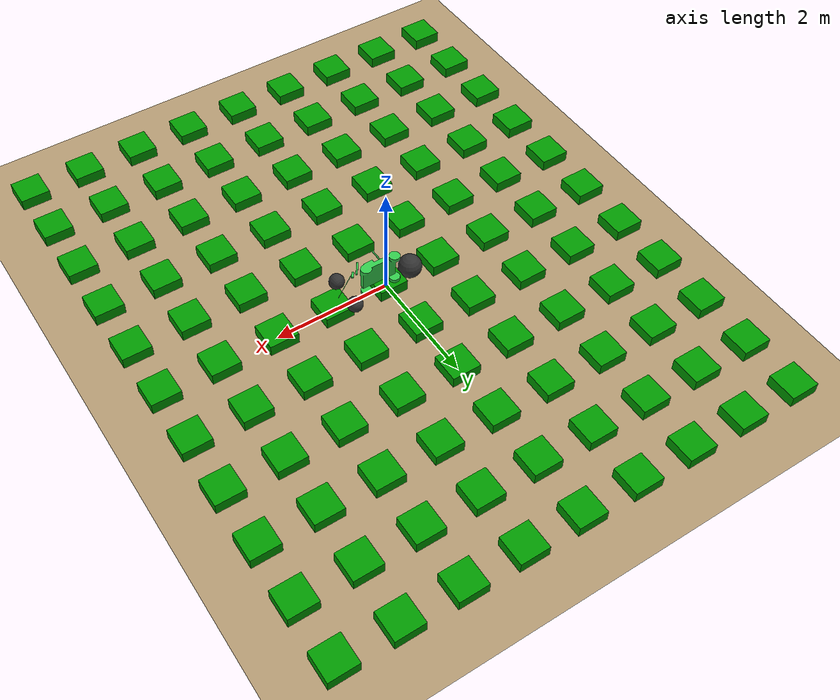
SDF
<sdf version="1.6">
  <world name="weeding_field">
    <physics name="1ms" type="ignored">
      <max_step_size>0.001</max_step_size>
      <real_time_factor>1.0</real_time_factor>
    </physics>
    <plugin filename="gz-sim-physics-system" name="gz::sim::systems::Physics"/>
    <plugin filename="gz-sim-user-commands-system" name="gz::sim::systems::UserCommands"/>
    <plugin filename="gz-sim-scene-broadcaster-system" name="gz::sim::systems::SceneBroadcaster"/>

    <light type="directional" name="sun">
      <pose>0 0 10 0 0 0</pose>
      <diffuse>1 1 1 1</diffuse>
      <direction>-0.5 0.1 -0.9</direction>
    </light>

    <model name="ground_plane">
      <static>true</static>
      <link name="link">
        <collision name="collision">
          <geometry><plane><normal>0 0 1</normal><size>100 100</size></plane></geometry>
        </collision>
        <visual name="visual">
          <geometry><plane><normal>0 0 1</normal><size>100 100</size></plane></geometry>
          <material><ambient>0.7 0.6 0.45 1</ambient><diffuse>0.7 0.6 0.45 1</diffuse></material>
        </visual>
      </link>
    </model>

    <!-- 9 crop rows: rows of green boxes along +Y -->

    <model name="crop_rows">
      <static>true</static>
      <link name="link">
      <collision name="crop_0_-5"><pose>-4 -5 0.1 0 0 0</pose>
        <geometry><box><size>0.5 0.5 0.2</size></box></geometry></collision>
      <visual name="crop_0_-5"><pose>-4 -5 0.1 0 0 0</pose>
        <geometry><box><size>0.5 0.5 0.2</size></box></geometry>
        <material><ambient>0 0.5 0 1</ambient><diffuse>0 0.6 0 1</diffuse></material></visual>

      <collision name="crop_0_-4"><pose>-4 -4 0.1 0 0 0</pose>
        <geometry><box><size>0.5 0.5 0.2</size></box></geometry></collision>
      <visual name="crop_0_-4"><pose>-4 -4 0.1 0 0 0</pose>
        <geometry><box><size>0.5 0.5 0.2</size></box></geometry>
        <material><ambient>0 0.5 0 1</ambient><diffuse>0 0.6 0 1</diffuse></material></visual>

      <collision name="crop_0_-3"><pose>-4 -3 0.1 0 0 0</pose>
        <geometry><box><size>0.5 0.5 0.2</size></box></geometry></collision>
      <visual name="crop_0_-3"><pose>-4 -3 0.1 0 0 0</pose>
        <geometry><box><size>0.5 0.5 0.2</size></box></geometry>
        <material><ambient>0 0.5 0 1</ambient><diffuse>0 0.6 0 1</diffuse></material></visual>

      <collision name="crop_0_-2"><pose>-4 -2 0.1 0 0 0</pose>
        <geometry><box><size>0.5 0.5 0.2</size></box></geometry></collision>
      <visual name="crop_0_-2"><pose>-4 -2 0.1 0 0 0</pose>
        <geometry><box><size>0.5 0.5 0.2</size></box></geometry>
        <material><ambient>0 0.5 0 1</ambient><diffuse>0 0.6 0 1</diffuse></material></visual>

      <collision name="crop_0_-1"><pose>-4 -1 0.1 0 0 0</pose>
        <geometry><box><size>0.5 0.5 0.2</size></box></geometry></collision>
      <visual name="crop_0_-1"><pose>-4 -1 0.1 0 0 0</pose>
        <geometry><box><size>0.5 0.5 0.2</size></box></geometry>
        <material><ambient>0 0.5 0 1</ambient><diffuse>0 0.6 0 1</diffuse></material></visual>

      <collision name="crop_0_0"><pose>-4 0 0.1 0 0 0</pose>
        <geometry><box><size>0.5 0.5 0.2</size></box></geometry></collision>
      <visual name="crop_0_0"><pose>-4 0 0.1 0 0 0</pose>
        <geometry><box><size>0.5 0.5 0.2</size></box></geometry>
        <material><ambient>0 0.5 0 1</ambient><diffuse>0 0.6 0 1</diffuse></material></visual>

      <collision name="crop_0_1"><pose>-4 1 0.1 0 0 0</pose>
        <geometry><box><size>0.5 0.5 0.2</size></box></geometry></collision>
      <visual name="crop_0_1"><pose>-4 1 0.1 0 0 0</pose>
        <geometry><box><size>0.5 0.5 0.2</size></box></geometry>
        <material><ambient>0 0.5 0 1</ambient><diffuse>0 0.6 0 1</diffuse></material></visual>

      <collision name="crop_0_2"><pose>-4 2 0.1 0 0 0</pose>
        <geometry><box><size>0.5 0.5 0.2</size></box></geometry></collision>
      <visual name="crop_0_2"><pose>-4 2 0.1 0 0 0</pose>
        <geometry><box><size>0.5 0.5 0.2</size></box></geometry>
        <material><ambient>0 0.5 0 1</ambient><diffuse>0 0.6 0 1</diffuse></material></visual>

      <collision name="crop_0_3"><pose>-4 3 0.1 0 0 0</pose>
        <geometry><box><size>0.5 0.5 0.2</size></box></geometry></collision>
      <visual name="crop_0_3"><pose>-4 3 0.1 0 0 0</pose>
        <geometry><box><size>0.5 0.5 0.2</size></box></geometry>
        <material><ambient>0 0.5 0 1</ambient><diffuse>0 0.6 0 1</diffuse></material></visual>

      <collision name="crop_0_4"><pose>-4 4 0.1 0 0 0</pose>
        <geometry><box><size>0.5 0.5 0.2</size></box></geometry></collision>
      <visual name="crop_0_4"><pose>-4 4 0.1 0 0 0</pose>
        <geometry><box><size>0.5 0.5 0.2</size></box></geometry>
        <material><ambient>0 0.5 0 1</ambient><diffuse>0 0.6 0 1</diffuse></material></visual>

      <collision name="crop_0_5"><pose>-4 5 0.1 0 0 0</pose>
        <geometry><box><size>0.5 0.5 0.2</size></box></geometry></collision>
      <visual name="crop_0_5"><pose>-4 5 0.1 0 0 0</pose>
        <geometry><box><size>0.5 0.5 0.2</size></box></geometry>
        <material><ambient>0 0.5 0 1</ambient><diffuse>0 0.6 0 1</diffuse></material></visual>

      <collision name="crop_1_-5"><pose>-3 -5 0.1 0 0 0</pose>
        <geometry><box><size>0.5 0.5 0.2</size></box></geometry></collision>
      <visual name="crop_1_-5"><pose>-3 -5 0.1 0 0 0</pose>
        <geometry><box><size>0.5 0.5 0.2</size></box></geometry>
        <material><ambient>0 0.5 0 1</ambient><diffuse>0 0.6 0 1</diffuse></material></visual>

      <collision name="crop_1_-4"><pose>-3 -4 0.1 0 0 0</pose>
        <geometry><box><size>0.5 0.5 0.2</size></box></geometry></collision>
      <visual name="crop_1_-4"><pose>-3 -4 0.1 0 0 0</pose>
        <geometry><box><size>0.5 0.5 0.2</size></box></geometry>
        <material><ambient>0 0.5 0 1</ambient><diffuse>0 0.6 0 1</diffuse></material></visual>

      <collision name="crop_1_-3"><pose>-3 -3 0.1 0 0 0</pose>
        <geometry><box><size>0.5 0.5 0.2</size></box></geometry></collision>
      <visual name="crop_1_-3"><pose>-3 -3 0.1 0 0 0</pose>
        <geometry><box><size>0.5 0.5 0.2</size></box></geometry>
        <material><ambient>0 0.5 0 1</ambient><diffuse>0 0.6 0 1</diffuse></material></visual>

      <collision name="crop_1_-2"><pose>-3 -2 0.1 0 0 0</pose>
        <geometry><box><size>0.5 0.5 0.2</size></box></geometry></collision>
      <visual name="crop_1_-2"><pose>-3 -2 0.1 0 0 0</pose>
        <geometry><box><size>0.5 0.5 0.2</size></box></geometry>
        <material><ambient>0 0.5 0 1</ambient><diffuse>0 0.6 0 1</diffuse></material></visual>

      <collision name="crop_1_-1"><pose>-3 -1 0.1 0 0 0</pose>
        <geometry><box><size>0.5 0.5 0.2</size></box></geometry></collision>
      <visual name="crop_1_-1"><pose>-3 -1 0.1 0 0 0</pose>
        <geometry><box><size>0.5 0.5 0.2</size></box></geometry>
        <material><ambient>0 0.5 0 1</ambient><diffuse>0 0.6 0 1</diffuse></material></visual>

      <collision name="crop_1_0"><pose>-3 0 0.1 0 0 0</pose>
        <geometry><box><size>0.5 0.5 0.2</size></box></geometry></collision>
      <visual name="crop_1_0"><pose>-3 0 0.1 0 0 0</pose>
        <geometry><box><size>0.5 0.5 0.2</size></box></geometry>
        <material><ambient>0 0.5 0 1</ambient><diffuse>0 0.6 0 1</diffuse></material></visual>

      <collision name="crop_1_1"><pose>-3 1 0.1 0 0 0</pose>
        <geometry><box><size>0.5 0.5 0.2</size></box></geometry></collision>
      <visual name="crop_1_1"><pose>-3 1 0.1 0 0 0</pose>
        <geometry><box><size>0.5 0.5 0.2</size></box></geometry>
        <material><ambient>0 0.5 0 1</ambient><diffuse>0 0.6 0 1</diffuse></material></visual>

      <collision name="crop_1_2"><pose>-3 2 0.1 0 0 0</pose>
        <geometry><box><size>0.5 0.5 0.2</size></box></geometry></collision>
      <visual name="crop_1_2"><pose>-3 2 0.1 0 0 0</pose>
        <geometry><box><size>0.5 0.5 0.2</size></box></geometry>
        <material><ambient>0 0.5 0 1</ambient><diffuse>0 0.6 0 1</diffuse></material></visual>

      <collision name="crop_1_3"><pose>-3 3 0.1 0 0 0</pose>
        <geometry><box><size>0.5 0.5 0.2</size></box></geometry></collision>
      <visual name="crop_1_3"><pose>-3 3 0.1 0 0 0</pose>
        <geometry><box><size>0.5 0.5 0.2</size></box></geometry>
        <material><ambient>0 0.5 0 1</ambient><diffuse>0 0.6 0 1</diffuse></material></visual>

      <collision name="crop_1_4"><pose>-3 4 0.1 0 0 0</pose>
        <geometry><box><size>0.5 0.5 0.2</size></box></geometry></collision>
      <visual name="crop_1_4"><pose>-3 4 0.1 0 0 0</pose>
        <geometry><box><size>0.5 0.5 0.2</size></box></geometry>
        <material><ambient>0 0.5 0 1</ambient><diffuse>0 0.6 0 1</diffuse></material></visual>

      <collision name="crop_1_5"><pose>-3 5 0.1 0 0 0</pose>
        <geometry><box><size>0.5 0.5 0.2</size></box></geometry></collision>
      <visual name="crop_1_5"><pose>-3 5 0.1 0 0 0</pose>
        <geometry><box><size>0.5 0.5 0.2</size></box></geometry>
        <material><ambient>0 0.5 0 1</ambient><diffuse>0 0.6 0 1</diffuse></material></visual>

      <collision name="crop_2_-5"><pose>-2 -5 0.1 0 0 0</pose>
        <geometry><box><size>0.5 0.5 0.2</size></box></geometry></collision>
      <visual name="crop_2_-5"><pose>-2 -5 0.1 0 0 0</pose>
        <geometry><box><size>0.5 0.5 0.2</size></box></geometry>
        <material><ambient>0 0.5 0 1</ambient><diffuse>0 0.6 0 1</diffuse></material></visual>

      <collision name="crop_2_-4"><pose>-2 -4 0.1 0 0 0</pose>
        <geometry><box><size>0.5 0.5 0.2</size></box></geometry></collision>
      <visual name="crop_2_-4"><pose>-2 -4 0.1 0 0 0</pose>
        <geometry><box><size>0.5 0.5 0.2</size></box></geometry>
        <material><ambient>0 0.5 0 1</ambient><diffuse>0 0.6 0 1</diffuse></material></visual>

      <collision name="crop_2_-3"><pose>-2 -3 0.1 0 0 0</pose>
        <geometry><box><size>0.5 0.5 0.2</size></box></geometry></collision>
      <visual name="crop_2_-3"><pose>-2 -3 0.1 0 0 0</pose>
        <geometry><box><size>0.5 0.5 0.2</size></box></geometry>
        <material><ambient>0 0.5 0 1</ambient><diffuse>0 0.6 0 1</diffuse></material></visual>

      <collision name="crop_2_-2"><pose>-2 -2 0.1 0 0 0</pose>
        <geometry><box><size>0.5 0.5 0.2</size></box></geometry></collision>
      <visual name="crop_2_-2"><pose>-2 -2 0.1 0 0 0</pose>
        <geometry><box><size>0.5 0.5 0.2</size></box></geometry>
        <material><ambient>0 0.5 0 1</ambient><diffuse>0 0.6 0 1</diffuse></material></visual>

      <collision name="crop_2_-1"><pose>-2 -1 0.1 0 0 0</pose>
        <geometry><box><size>0.5 0.5 0.2</size></box></geometry></collision>
      <visual name="crop_2_-1"><pose>-2 -1 0.1 0 0 0</pose>
        <geometry><box><size>0.5 0.5 0.2</size></box></geometry>
        <material><ambient>0 0.5 0 1</ambient><diffuse>0 0.6 0 1</diffuse></material></visual>

      <collision name="crop_2_0"><pose>-2 0 0.1 0 0 0</pose>
        <geometry><box><size>0.5 0.5 0.2</size></box></geometry></collision>
      <visual name="crop_2_0"><pose>-2 0 0.1 0 0 0</pose>
        <geometry><box><size>0.5 0.5 0.2</size></box></geometry>
        <material><ambient>0 0.5 0 1</ambient><diffuse>0 0.6 0 1</diffuse></material></visual>

      <collision name="crop_2_1"><pose>-2 1 0.1 0 0 0</pose>
        <geometry><box><size>0.5 0.5 0.2</size></box></geometry></collision>
      <visual name="crop_2_1"><pose>-2 1 0.1 0 0 0</pose>
        <geometry><box><size>0.5 0.5 0.2</size></box></geometry>
        <material><ambient>0 0.5 0 1</ambient><diffuse>0 0.6 0 1</diffuse></material></visual>

      <collision name="crop_2_2"><pose>-2 2 0.1 0 0 0</pose>
        <geometry><box><size>0.5 0.5 0.2</size></box></geometry></collision>
      <visual name="crop_2_2"><pose>-2 2 0.1 0 0 0</pose>
        <geometry><box><size>0.5 0.5 0.2</size></box></geometry>
        <material><ambient>0 0.5 0 1</ambient><diffuse>0 0.6 0 1</diffuse></material></visual>

      <collision name="crop_2_3"><pose>-2 3 0.1 0 0 0</pose>
        <geometry><box><size>0.5 0.5 0.2</size></box></geometry></collision>
      <visual name="crop_2_3"><pose>-2 3 0.1 0 0 0</pose>
        <geometry><box><size>0.5 0.5 0.2</size></box></geometry>
        <material><ambient>0 0.5 0 1</ambient><diffuse>0 0.6 0 1</diffuse></material></visual>

      <collision name="crop_2_4"><pose>-2 4 0.1 0 0 0</pose>
        <geometry><box><size>0.5 0.5 0.2</size></box></geometry></collision>
      <visual name="crop_2_4"><pose>-2 4 0.1 0 0 0</pose>
        <geometry><box><size>0.5 0.5 0.2</size></box></geometry>
        <material><ambient>0 0.5 0 1</ambient><diffuse>0 0.6 0 1</diffuse></material></visual>

      <collision name="crop_2_5"><pose>-2 5 0.1 0 0 0</pose>
        <geometry><box><size>0.5 0.5 0.2</size></box></geometry></collision>
      <visual name="crop_2_5"><pose>-2 5 0.1 0 0 0</pose>
        <geometry><box><size>0.5 0.5 0.2</size></box></geometry>
        <material><ambient>0 0.5 0 1</ambient><diffuse>0 0.6 0 1</diffuse></material></visual>

      <collision name="crop_3_-5"><pose>-1 -5 0.1 0 0 0</pose>
        <geometry><box><size>0.5 0.5 0.2</size></box></geometry></collision>
      <visual name="crop_3_-5"><pose>-1 -5 0.1 0 0 0</pose>
        <geometry><box><size>0.5 0.5 0.2</size></box></geometry>
        <material><ambient>0 0.5 0 1</ambient><diffuse>0 0.6 0 1</diffuse></material></visual>

      <collision name="crop_3_-4"><pose>-1 -4 0.1 0 0 0</pose>
        <geometry><box><size>0.5 0.5 0.2</size></box></geometry></collision>
      <visual name="crop_3_-4"><pose>-1 -4 0.1 0 0 0</pose>
        <geometry><box><size>0.5 0.5 0.2</size></box></geometry>
        <material><ambient>0 0.5 0 1</ambient><diffuse>0 0.6 0 1</diffuse></material></visual>

      <collision name="crop_3_-3"><pose>-1 -3 0.1 0 0 0</pose>
        <geometry><box><size>0.5 0.5 0.2</size></box></geometry></collision>
      <visual name="crop_3_-3"><pose>-1 -3 0.1 0 0 0</pose>
        <geometry><box><size>0.5 0.5 0.2</size></box></geometry>
        <material><ambient>0 0.5 0 1</ambient><diffuse>0 0.6 0 1</diffuse></material></visual>

      <collision name="crop_3_-2"><pose>-1 -2 0.1 0 0 0</pose>
        <geometry><box><size>0.5 0.5 0.2</size></box></geometry></collision>
      <visual name="crop_3_-2"><pose>-1 -2 0.1 0 0 0</pose>
        <geometry><box><size>0.5 0.5 0.2</size></box></geometry>
        <material><ambient>0 0.5 0 1</ambient><diffuse>0 0.6 0 1</diffuse></material></visual>

      <collision name="crop_3_-1"><pose>-1 -1 0.1 0 0 0</pose>
        <geometry><box><size>0.5 0.5 0.2</size></box></geometry></collision>
      <visual name="crop_3_-1"><pose>-1 -1 0.1 0 0 0</pose>
        <geometry><box><size>0.5 0.5 0.2</size></box></geometry>
        <material><ambient>0 0.5 0 1</ambient><diffuse>0 0.6 0 1</diffuse></material></visual>

      <collision name="crop_3_0"><pose>-1 0 0.1 0 0 0</pose>
        <geometry><box><size>0.5 0.5 0.2</size></box></geometry></collision>
      <visual name="crop_3_0"><pose>-1 0 0.1 0 0 0</pose>
        <geometry><box><size>0.5 0.5 0.2</size></box></geometry>
        <material><ambient>0 0.5 0 1</ambient><diffuse>0 0.6 0 1</diffuse></material></visual>

      <collision name="crop_3_1"><pose>-1 1 0.1 0 0 0</pose>
        <geometry><box><size>0.5 0.5 0.2</size></box></geometry></collision>
      <visual name="crop_3_1"><pose>-1 1 0.1 0 0 0</pose>
        <geometry><box><size>0.5 0.5 0.2</size></box></geometry>
        <material><ambient>0 0.5 0 1</ambient><diffuse>0 0.6 0 1</diffuse></material></visual>

      <collision name="crop_3_2"><pose>-1 2 0.1 0 0 0</pose>
        <geometry><box><size>0.5 0.5 0.2</size></box></geometry></collision>
      <visual name="crop_3_2"><pose>-1 2 0.1 0 0 0</pose>
        <geometry><box><size>0.5 0.5 0.2</size></box></geometry>
        <material><ambient>0 0.5 0 1</ambient><diffuse>0 0.6 0 1</diffuse></material></visual>

      <collision name="crop_3_3"><pose>-1 3 0.1 0 0 0</pose>
        <geometry><box><size>0.5 0.5 0.2</size></box></geometry></collision>
      <visual name="crop_3_3"><pose>-1 3 0.1 0 0 0</pose>
        <geometry><box><size>0.5 0.5 0.2</size></box></geometry>
        <material><ambient>0 0.5 0 1</ambient><diffuse>0 0.6 0 1</diffuse></material></visual>

      <collision name="crop_3_4"><pose>-1 4 0.1 0 0 0</pose>
        <geometry><box><size>0.5 0.5 0.2</size></box></geometry></collision>
      <visual name="crop_3_4"><pose>-1 4 0.1 0 0 0</pose>
        <geometry><box><size>0.5 0.5 0.2</size></box></geometry>
        <material><ambient>0 0.5 0 1</ambient><diffuse>0 0.6 0 1</diffuse></material></visual>

      <collision name="crop_3_5"><pose>-1 5 0.1 0 0 0</pose>
        <geometry><box><size>0.5 0.5 0.2</size></box></geometry></collision>
      <visual name="crop_3_5"><pose>-1 5 0.1 0 0 0</pose>
        <geometry><box><size>0.5 0.5 0.2</size></box></geometry>
        <material><ambient>0 0.5 0 1</ambient><diffuse>0 0.6 0 1</diffuse></material></visual>

      <collision name="crop_4_-5"><pose>0 -5 0.1 0 0 0</pose>
        <geometry><box><size>0.5 0.5 0.2</size></box></geometry></collision>
      <visual name="crop_4_-5"><pose>0 -5 0.1 0 0 0</pose>
        <geometry><box><size>0.5 0.5 0.2</size></box></geometry>
        <material><ambient>0 0.5 0 1</ambient><diffuse>0 0.6 0 1</diffuse></material></visual>

      <collision name="crop_4_-4"><pose>0 -4 0.1 0 0 0</pose>
        <geometry><box><size>0.5 0.5 0.2</size></box></geometry></collision>
      <visual name="crop_4_-4"><pose>0 -4 0.1 0 0 0</pose>
        <geometry><box><size>0.5 0.5 0.2</size></box></geometry>
        <material><ambient>0 0.5 0 1</ambient><diffuse>0 0.6 0 1</diffuse></material></visual>

      <collision name="crop_4_-3"><pose>0 -3 0.1 0 0 0</pose>
        <geometry><box><size>0.5 0.5 0.2</size></box></geometry></collision>
      <visual name="crop_4_-3"><pose>0 -3 0.1 0 0 0</pose>
        <geometry><box><size>0.5 0.5 0.2</size></box></geometry>
        <material><ambient>0 0.5 0 1</ambient><diffuse>0 0.6 0 1</diffuse></material></visual>

      <collision name="crop_4_-2"><pose>0 -2 0.1 0 0 0</pose>
        <geometry><box><size>0.5 0.5 0.2</size></box></geometry></collision>
      <visual name="crop_4_-2"><pose>0 -2 0.1 0 0 0</pose>
        <geometry><box><size>0.5 0.5 0.2</size></box></geometry>
        <material><ambient>0 0.5 0 1</ambient><diffuse>0 0.6 0 1</diffuse></material></visual>

      <collision name="crop_4_-1"><pose>0 -1 0.1 0 0 0</pose>
        <geometry><box><size>0.5 0.5 0.2</size></box></geometry></collision>
      <visual name="crop_4_-1"><pose>0 -1 0.1 0 0 0</pose>
        <geometry><box><size>0.5 0.5 0.2</size></box></geometry>
        <material><ambient>0 0.5 0 1</ambient><diffuse>0 0.6 0 1</diffuse></material></visual>

      <collision name="crop_4_0"><pose>0 0 0.1 0 0 0</pose>
        <geometry><box><size>0.5 0.5 0.2</size></box></geometry></collision>
      <visual name="crop_4_0"><pose>0 0 0.1 0 0 0</pose>
        <geometry><box><size>0.5 0.5 0.2</size></box></geometry>
        <material><ambient>0 0.5 0 1</ambient><diffuse>0 0.6 0 1</diffuse></material></visual>

      <collision name="crop_4_1"><pose>0 1 0.1 0 0 0</pose>
        <geometry><box><size>0.5 0.5 0.2</size></box></geometry></collision>
      <visual name="crop_4_1"><pose>0 1 0.1 0 0 0</pose>
        <geometry><box><size>0.5 0.5 0.2</size></box></geometry>
        <material><ambient>0 0.5 0 1</ambient><diffuse>0 0.6 0 1</diffuse></material></visual>

      <collision name="crop_4_2"><pose>0 2 0.1 0 0 0</pose>
        <geometry><box><size>0.5 0.5 0.2</size></box></geometry></collision>
      <visual name="crop_4_2"><pose>0 2 0.1 0 0 0</pose>
        <geometry><box><size>0.5 0.5 0.2</size></box></geometry>
        <material><ambient>0 0.5 0 1</ambient><diffuse>0 0.6 0 1</diffuse></material></visual>

      <collision name="crop_4_3"><pose>0 3 0.1 0 0 0</pose>
        <geometry><box><size>0.5 0.5 0.2</size></box></geometry></collision>
      <visual name="crop_4_3"><pose>0 3 0.1 0 0 0</pose>
        <geometry><box><size>0.5 0.5 0.2</size></box></geometry>
        <material><ambient>0 0.5 0 1</ambient><diffuse>0 0.6 0 1</diffuse></material></visual>

      <collision name="crop_4_4"><pose>0 4 0.1 0 0 0</pose>
        <geometry><box><size>0.5 0.5 0.2</size></box></geometry></collision>
      <visual name="crop_4_4"><pose>0 4 0.1 0 0 0</pose>
        <geometry><box><size>0.5 0.5 0.2</size></box></geometry>
        <material><ambient>0 0.5 0 1</ambient><diffuse>0 0.6 0 1</diffuse></material></visual>

      <collision name="crop_4_5"><pose>0 5 0.1 0 0 0</pose>
        <geometry><box><size>0.5 0.5 0.2</size></box></geometry></collision>
      <visual name="crop_4_5"><pose>0 5 0.1 0 0 0</pose>
        <geometry><box><size>0.5 0.5 0.2</size></box></geometry>
        <material><ambient>0 0.5 0 1</ambient><diffuse>0 0.6 0 1</diffuse></material></visual>

      <collision name="crop_5_-5"><pose>1 -5 0.1 0 0 0</pose>
        <geometry><box><size>0.5 0.5 0.2</size></box></geometry></collision>
      <visual name="crop_5_-5"><pose>1 -5 0.1 0 0 0</pose>
        <geometry><box><size>0.5 0.5 0.2</size></box></geometry>
        <material><ambient>0 0.5 0 1</ambient><diffuse>0 0.6 0 1</diffuse></material></visual>

      <collision name="crop_5_-4"><pose>1 -4 0.1 0 0 0</pose>
        <geometry><box><size>0.5 0.5 0.2</size></box></geometry></collision>
      <visual name="crop_5_-4"><pose>1 -4 0.1 0 0 0</pose>
        <geometry><box><size>0.5 0.5 0.2</size></box></geometry>
        <material><ambient>0 0.5 0 1</ambient><diffuse>0 0.6 0 1</diffuse></material></visual>

      <collision name="crop_5_-3"><pose>1 -3 0.1 0 0 0</pose>
        <geometry><box><size>0.5 0.5 0.2</size></box></geometry></collision>
      <visual name="crop_5_-3"><pose>1 -3 0.1 0 0 0</pose>
        <geometry><box><size>0.5 0.5 0.2</size></box></geometry>
        <material><ambient>0 0.5 0 1</ambient><diffuse>0 0.6 0 1</diffuse></material></visual>

      <collision name="crop_5_-2"><pose>1 -2 0.1 0 0 0</pose>
        <geometry><box><size>0.5 0.5 0.2</size></box></geometry></collision>
      <visual name="crop_5_-2"><pose>1 -2 0.1 0 0 0</pose>
        <geometry><box><size>0.5 0.5 0.2</size></box></geometry>
        <material><ambient>0 0.5 0 1</ambient><diffuse>0 0.6 0 1</diffuse></material></visual>

      <collision name="crop_5_-1"><pose>1 -1 0.1 0 0 0</pose>
        <geometry><box><size>0.5 0.5 0.2</size></box></geometry></collision>
      <visual name="crop_5_-1"><pose>1 -1 0.1 0 0 0</pose>
        <geometry><box><size>0.5 0.5 0.2</size></box></geometry>
        <material><ambient>0 0.5 0 1</ambient><diffuse>0 0.6 0 1</diffuse></material></visual>

      <collision name="crop_5_0"><pose>1 0 0.1 0 0 0</pose>
        <geometry><box><size>0.5 0.5 0.2</size></box></geometry></collision>
      <visual name="crop_5_0"><pose>1 0 0.1 0 0 0</pose>
        <geometry><box><size>0.5 0.5 0.2</size></box></geometry>
        <material><ambient>0 0.5 0 1</ambient><diffuse>0 0.6 0 1</diffuse></material></visual>

      <collision name="crop_5_1"><pose>1 1 0.1 0 0 0</pose>
        <geometry><box><size>0.5 0.5 0.2</size></box></geometry></collision>
      <visual name="crop_5_1"><pose>1 1 0.1 0 0 0</pose>
        <geometry><box><size>0.5 0.5 0.2</size></box></geometry>
        <material><ambient>0 0.5 0 1</ambient><diffuse>0 0.6 0 1</diffuse></material></visual>

      <collision name="crop_5_2"><pose>1 2 0.1 0 0 0</pose>
        <geometry><box><size>0.5 0.5 0.2</size></box></geometry></collision>
      <visual name="crop_5_2"><pose>1 2 0.1 0 0 0</pose>
        <geometry><box><size>0.5 0.5 0.2</size></box></geometry>
        <material><ambient>0 0.5 0 1</ambient><diffuse>0 0.6 0 1</diffuse></material></visual>

      <collision name="crop_5_3"><pose>1 3 0.1 0 0 0</pose>
        <geometry><box><size>0.5 0.5 0.2</size></box></geometry></collision>
      <visual name="crop_5_3"><pose>1 3 0.1 0 0 0</pose>
        <geometry><box><size>0.5 0.5 0.2</size></box></geometry>
        <material><ambient>0 0.5 0 1</ambient><diffuse>0 0.6 0 1</diffuse></material></visual>

      <collision name="crop_5_4"><pose>1 4 0.1 0 0 0</pose>
        <geometry><box><size>0.5 0.5 0.2</size></box></geometry></collision>
      <visual name="crop_5_4"><pose>1 4 0.1 0 0 0</pose>
        <geometry><box><size>0.5 0.5 0.2</size></box></geometry>
        <material><ambient>0 0.5 0 1</ambient><diffuse>0 0.6 0 1</diffuse></material></visual>

      <collision name="crop_5_5"><pose>1 5 0.1 0 0 0</pose>
        <geometry><box><size>0.5 0.5 0.2</size></box></geometry></collision>
      <visual name="crop_5_5"><pose>1 5 0.1 0 0 0</pose>
        <geometry><box><size>0.5 0.5 0.2</size></box></geometry>
        <material><ambient>0 0.5 0 1</ambient><diffuse>0 0.6 0 1</diffuse></material></visual>

      <collision name="crop_6_-5"><pose>2 -5 0.1 0 0 0</pose>
        <geometry><box><size>0.5 0.5 0.2</size></box></geometry></collision>
      <visual name="crop_6_-5"><pose>2 -5 0.1 0 0 0</pose>
        <geometry><box><size>0.5 0.5 0.2</size></box></geometry>
        <material><ambient>0 0.5 0 1</ambient><diffuse>0 0.6 0 1</diffuse></material></visual>

      <collision name="crop_6_-4"><pose>2 -4 0.1 0 0 0</pose>
        <geometry><box><size>0.5 0.5 0.2</size></box></geometry></collision>
      <visual name="crop_6_-4"><pose>2 -4 0.1 0 0 0</pose>
        <geometry><box><size>0.5 0.5 0.2</size></box></geometry>
        <material><ambient>0 0.5 0 1</ambient><diffuse>0 0.6 0 1</diffuse></material></visual>

      <collision name="crop_6_-3"><pose>2 -3 0.1 0 0 0</pose>
        <geometry><box><size>0.5 0.5 0.2</size></box></geometry></collision>
      <visual name="crop_6_-3"><pose>2 -3 0.1 0 0 0</pose>
        <geometry><box><size>0.5 0.5 0.2</size></box></geometry>
        <material><ambient>0 0.5 0 1</ambient><diffuse>0 0.6 0 1</diffuse></material></visual>

      <collision name="crop_6_-2"><pose>2 -2 0.1 0 0 0</pose>
        <geometry><box><size>0.5 0.5 0.2</size></box></geometry></collision>
      <visual name="crop_6_-2"><pose>2 -2 0.1 0 0 0</pose>
        <geometry><box><size>0.5 0.5 0.2</size></box></geometry>
        <material><ambient>0 0.5 0 1</ambient><diffuse>0 0.6 0 1</diffuse></material></visual>

      <collision name="crop_6_-1"><pose>2 -1 0.1 0 0 0</pose>
        <geometry><box><size>0.5 0.5 0.2</size></box></geometry></collision>
      <visual name="crop_6_-1"><pose>2 -1 0.1 0 0 0</pose>
        <geometry><box><size>0.5 0.5 0.2</size></box></geometry>
        <material><ambient>0 0.5 0 1</ambient><diffuse>0 0.6 0 1</diffuse></material></visual>

      <collision name="crop_6_0"><pose>2 0 0.1 0 0 0</pose>
        <geometry><box><size>0.5 0.5 0.2</size></box></geometry></collision>
      <visual name="crop_6_0"><pose>2 0 0.1 0 0 0</pose>
        <geometry><box><size>0.5 0.5 0.2</size></box></geometry>
        <material><ambient>0 0.5 0 1</ambient><diffuse>0 0.6 0 1</diffuse></material></visual>

      <collision name="crop_6_1"><pose>2 1 0.1 0 0 0</pose>
        <geometry><box><size>0.5 0.5 0.2</size></box></geometry></collision>
      <visual name="crop_6_1"><pose>2 1 0.1 0 0 0</pose>
        <geometry><box><size>0.5 0.5 0.2</size></box></geometry>
        <material><ambient>0 0.5 0 1</ambient><diffuse>0 0.6 0 1</diffuse></material></visual>

      <collision name="crop_6_2"><pose>2 2 0.1 0 0 0</pose>
        <geometry><box><size>0.5 0.5 0.2</size></box></geometry></collision>
      <visual name="crop_6_2"><pose>2 2 0.1 0 0 0</pose>
        <geometry><box><size>0.5 0.5 0.2</size></box></geometry>
        <material><ambient>0 0.5 0 1</ambient><diffuse>0 0.6 0 1</diffuse></material></visual>

      <collision name="crop_6_3"><pose>2 3 0.1 0 0 0</pose>
        <geometry><box><size>0.5 0.5 0.2</size></box></geometry></collision>
      <visual name="crop_6_3"><pose>2 3 0.1 0 0 0</pose>
        <geometry><box><size>0.5 0.5 0.2</size></box></geometry>
        <material><ambient>0 0.5 0 1</ambient><diffuse>0 0.6 0 1</diffuse></material></visual>

      <collision name="crop_6_4"><pose>2 4 0.1 0 0 0</pose>
        <geometry><box><size>0.5 0.5 0.2</size></box></geometry></collision>
      <visual name="crop_6_4"><pose>2 4 0.1 0 0 0</pose>
        <geometry><box><size>0.5 0.5 0.2</size></box></geometry>
        <material><ambient>0 0.5 0 1</ambient><diffuse>0 0.6 0 1</diffuse></material></visual>

      <collision name="crop_6_5"><pose>2 5 0.1 0 0 0</pose>
        <geometry><box><size>0.5 0.5 0.2</size></box></geometry></collision>
      <visual name="crop_6_5"><pose>2 5 0.1 0 0 0</pose>
        <geometry><box><size>0.5 0.5 0.2</size></box></geometry>
        <material><ambient>0 0.5 0 1</ambient><diffuse>0 0.6 0 1</diffuse></material></visual>

      <collision name="crop_7_-5"><pose>3 -5 0.1 0 0 0</pose>
        <geometry><box><size>0.5 0.5 0.2</size></box></geometry></collision>
      <visual name="crop_7_-5"><pose>3 -5 0.1 0 0 0</pose>
        <geometry><box><size>0.5 0.5 0.2</size></box></geometry>
        <material><ambient>0 0.5 0 1</ambient><diffuse>0 0.6 0 1</diffuse></material></visual>

      <collision name="crop_7_-4"><pose>3 -4 0.1 0 0 0</pose>
        <geometry><box><size>0.5 0.5 0.2</size></box></geometry></collision>
      <visual name="crop_7_-4"><pose>3 -4 0.1 0 0 0</pose>
        <geometry><box><size>0.5 0.5 0.2</size></box></geometry>
        <material><ambient>0 0.5 0 1</ambient><diffuse>0 0.6 0 1</diffuse></material></visual>

      <collision name="crop_7_-3"><pose>3 -3 0.1 0 0 0</pose>
        <geometry><box><size>0.5 0.5 0.2</size></box></geometry></collision>
      <visual name="crop_7_-3"><pose>3 -3 0.1 0 0 0</pose>
        <geometry><box><size>0.5 0.5 0.2</size></box></geometry>
        <material><ambient>0 0.5 0 1</ambient><diffuse>0 0.6 0 1</diffuse></material></visual>

      <collision name="crop_7_-2"><pose>3 -2 0.1 0 0 0</pose>
        <geometry><box><size>0.5 0.5 0.2</size></box></geometry></collision>
      <visual name="crop_7_-2"><pose>3 -2 0.1 0 0 0</pose>
        <geometry><box><size>0.5 0.5 0.2</size></box></geometry>
        <material><ambient>0 0.5 0 1</ambient><diffuse>0 0.6 0 1</diffuse></material></visual>

      <collision name="crop_7_-1"><pose>3 -1 0.1 0 0 0</pose>
        <geometry><box><size>0.5 0.5 0.2</size></box></geometry></collision>
      <visual name="crop_7_-1"><pose>3 -1 0.1 0 0 0</pose>
        <geometry><box><size>0.5 0.5 0.2</size></box></geometry>
        <material><ambient>0 0.5 0 1</ambient><diffuse>0 0.6 0 1</diffuse></material></visual>

      <collision name="crop_7_0"><pose>3 0 0.1 0 0 0</pose>
        <geometry><box><size>0.5 0.5 0.2</size></box></geometry></collision>
      <visual name="crop_7_0"><pose>3 0 0.1 0 0 0</pose>
        <geometry><box><size>0.5 0.5 0.2</size></box></geometry>
        <material><ambient>0 0.5 0 1</ambient><diffuse>0 0.6 0 1</diffuse></material></visual>

      <collision name="crop_7_1"><pose>3 1 0.1 0 0 0</pose>
        <geometry><box><size>0.5 0.5 0.2</size></box></geometry></collision>
      <visual name="crop_7_1"><pose>3 1 0.1 0 0 0</pose>
        <geometry><box><size>0.5 0.5 0.2</size></box></geometry>
        <material><ambient>0 0.5 0 1</ambient><diffuse>0 0.6 0 1</diffuse></material></visual>

      <collision name="crop_7_2"><pose>3 2 0.1 0 0 0</pose>
        <geometry><box><size>0.5 0.5 0.2</size></box></geometry></collision>
      <visual name="crop_7_2"><pose>3 2 0.1 0 0 0</pose>
        <geometry><box><size>0.5 0.5 0.2</size></box></geometry>
        <material><ambient>0 0.5 0 1</ambient><diffuse>0 0.6 0 1</diffuse></material></visual>

      <collision name="crop_7_3"><pose>3 3 0.1 0 0 0</pose>
        <geometry><box><size>0.5 0.5 0.2</size></box></geometry></collision>
      <visual name="crop_7_3"><pose>3 3 0.1 0 0 0</pose>
        <geometry><box><size>0.5 0.5 0.2</size></box></geometry>
        <material><ambient>0 0.5 0 1</ambient><diffuse>0 0.6 0 1</diffuse></material></visual>

      <collision name="crop_7_4"><pose>3 4 0.1 0 0 0</pose>
        <geometry><box><size>0.5 0.5 0.2</size></box></geometry></collision>
      <visual name="crop_7_4"><pose>3 4 0.1 0 0 0</pose>
        <geometry><box><size>0.5 0.5 0.2</size></box></geometry>
        <material><ambient>0 0.5 0 1</ambient><diffuse>0 0.6 0 1</diffuse></material></visual>

      <collision name="crop_7_5"><pose>3 5 0.1 0 0 0</pose>
        <geometry><box><size>0.5 0.5 0.2</size></box></geometry></collision>
      <visual name="crop_7_5"><pose>3 5 0.1 0 0 0</pose>
        <geometry><box><size>0.5 0.5 0.2</size></box></geometry>
        <material><ambient>0 0.5 0 1</ambient><diffuse>0 0.6 0 1</diffuse></material></visual>

      <collision name="crop_8_-5"><pose>4 -5 0.1 0 0 0</pose>
        <geometry><box><size>0.5 0.5 0.2</size></box></geometry></collision>
      <visual name="crop_8_-5"><pose>4 -5 0.1 0 0 0</pose>
        <geometry><box><size>0.5 0.5 0.2</size></box></geometry>
        <material><ambient>0 0.5 0 1</ambient><diffuse>0 0.6 0 1</diffuse></material></visual>

      <collision name="crop_8_-4"><pose>4 -4 0.1 0 0 0</pose>
        <geometry><box><size>0.5 0.5 0.2</size></box></geometry></collision>
      <visual name="crop_8_-4"><pose>4 -4 0.1 0 0 0</pose>
        <geometry><box><size>0.5 0.5 0.2</size></box></geometry>
        <material><ambient>0 0.5 0 1</ambient><diffuse>0 0.6 0 1</diffuse></material></visual>

      <collision name="crop_8_-3"><pose>4 -3 0.1 0 0 0</pose>
        <geometry><box><size>0.5 0.5 0.2</size></box></geometry></collision>
      <visual name="crop_8_-3"><pose>4 -3 0.1 0 0 0</pose>
        <geometry><box><size>0.5 0.5 0.2</size></box></geometry>
        <material><ambient>0 0.5 0 1</ambient><diffuse>0 0.6 0 1</diffuse></material></visual>

      <collision name="crop_8_-2"><pose>4 -2 0.1 0 0 0</pose>
        <geometry><box><size>0.5 0.5 0.2</size></box></geometry></collision>
      <visual name="crop_8_-2"><pose>4 -2 0.1 0 0 0</pose>
        <geometry><box><size>0.5 0.5 0.2</size></box></geometry>
        <material><ambient>0 0.5 0 1</ambient><diffuse>0 0.6 0 1</diffuse></material></visual>

      <collision name="crop_8_-1"><pose>4 -1 0.1 0 0 0</pose>
        <geometry><box><size>0.5 0.5 0.2</size></box></geometry></collision>
      <visual name="crop_8_-1"><pose>4 -1 0.1 0 0 0</pose>
        <geometry><box><size>0.5 0.5 0.2</size></box></geometry>
        <material><ambient>0 0.5 0 1</ambient><diffuse>0 0.6 0 1</diffuse></material></visual>

      <collision name="crop_8_0"><pose>4 0 0.1 0 0 0</pose>
        <geometry><box><size>0.5 0.5 0.2</size></box></geometry></collision>
      <visual name="crop_8_0"><pose>4 0 0.1 0 0 0</pose>
        <geometry><box><size>0.5 0.5 0.2</size></box></geometry>
        <material><ambient>0 0.5 0 1</ambient><diffuse>0 0.6 0 1</diffuse></material></visual>

      <collision name="crop_8_1"><pose>4 1 0.1 0 0 0</pose>
        <geometry><box><size>0.5 0.5 0.2</size></box></geometry></collision>
      <visual name="crop_8_1"><pose>4 1 0.1 0 0 0</pose>
        <geometry><box><size>0.5 0.5 0.2</size></box></geometry>
        <material><ambient>0 0.5 0 1</ambient><diffuse>0 0.6 0 1</diffuse></material></visual>

      <collision name="crop_8_2"><pose>4 2 0.1 0 0 0</pose>
        <geometry><box><size>0.5 0.5 0.2</size></box></geometry></collision>
      <visual name="crop_8_2"><pose>4 2 0.1 0 0 0</pose>
        <geometry><box><size>0.5 0.5 0.2</size></box></geometry>
        <material><ambient>0 0.5 0 1</ambient><diffuse>0 0.6 0 1</diffuse></material></visual>

      <collision name="crop_8_3"><pose>4 3 0.1 0 0 0</pose>
        <geometry><box><size>0.5 0.5 0.2</size></box></geometry></collision>
      <visual name="crop_8_3"><pose>4 3 0.1 0 0 0</pose>
        <geometry><box><size>0.5 0.5 0.2</size></box></geometry>
        <material><ambient>0 0.5 0 1</ambient><diffuse>0 0.6 0 1</diffuse></material></visual>

      <collision name="crop_8_4"><pose>4 4 0.1 0 0 0</pose>
        <geometry><box><size>0.5 0.5 0.2</size></box></geometry></collision>
      <visual name="crop_8_4"><pose>4 4 0.1 0 0 0</pose>
        <geometry><box><size>0.5 0.5 0.2</size></box></geometry>
        <material><ambient>0 0.5 0 1</ambient><diffuse>0 0.6 0 1</diffuse></material></visual>

      <collision name="crop_8_5"><pose>4 5 0.1 0 0 0</pose>
        <geometry><box><size>0.5 0.5 0.2</size></box></geometry></collision>
      <visual name="crop_8_5"><pose>4 5 0.1 0 0 0</pose>
        <geometry><box><size>0.5 0.5 0.2</size></box></geometry>
        <material><ambient>0 0.5 0 1</ambient><diffuse>0 0.6 0 1</diffuse></material></visual>
      </link>
    </model>

<model name='rover'>
      <pose>0.5 0 0.325 0 -0 0</pose>

      <link name='chassis'>
        <pose>-0.05 -0 0.11 0 -0 0</pose>
        <inertial>
          <mass>1.14395</mass>
          <inertia>
            <ixx>0.126164</ixx>
            <ixy>0</ixy>
            <ixz>0</ixz>
            <iyy>0.416519</iyy>
            <iyz>0</iyz>
            <izz>0.481014</izz>
          </inertia>
        </inertial>
        <visual name='visual'>
          <pose>0 0 -0.11 0 0 0</pose>
          <geometry>
            <mesh>
              <uri>file:///home/bayazid/Documents/Robotics/Semi-Autonomous-Weeding-Robot/Navigation/sim/rover.obj</uri>
            </mesh>
          </geometry>
          <material>
            <ambient>0.2 0.7 0.3 1</ambient>
            <diffuse>0.2 0.8 0.3 1</diffuse>
            <specular>0.0 0.0 1.0 1</specular>
          </material>
        </visual>
        <collision name='collision'>
          <geometry>
            <box>
              <size>0.8 0.5 0.25</size>
            </box>
          </geometry>
        </collision>
      </link>

      <link name='left_wheel'>
        <pose>0.25 0.28 -0.03 -1.5707 0 0</pose>
        <inertial>
          <mass>2</mass>
          <inertia>
            <ixx>0.145833</ixx>
            <ixy>0</ixy>
            <ixz>0</ixz>
            <iyy>0.145833</iyy>
            <iyz>0</iyz>
            <izz>0.125</izz>
          </inertia>
        </inertial>
        <visual name='visual'>
          <geometry>
            <sphere>
              <radius>0.13</radius>
            </sphere>
          </geometry>
          <material>
            <ambient>0.2 0.2 0.2 1</ambient>
            <diffuse>0.2 0.2 0.2 1</diffuse>
            <specular>0.2 0.2 0.2 1</specular>
          </material>
        </visual>
        <collision name='collision'>
          <geometry>
            <sphere>
              <radius>0.13</radius>
            </sphere>
          </geometry>
          <surface>
            <friction>
              <ode>
                <mu>1</mu>
                <mu2>1</mu2>
                <slip1>0.035</slip1>
                <slip2>0</slip2>
                <fdir1>0 0 1</fdir1>
              </ode>
              <bullet>
                <friction>1</friction>
                <friction2>1</friction2>
                <rolling_friction>0.1</rolling_friction>
              </bullet>
            </friction>
          </surface>
        </collision>
      </link>

      <link name='right_wheel'>
        <pose>0.25 -0.28 -0.03 -1.5707 0 0</pose>
        <inertial>
          <mass>2</mass>
          <inertia>
            <ixx>0.145833</ixx>
            <ixy>0</ixy>
            <ixz>0</ixz>
            <iyy>0.145833</iyy>
            <iyz>0</iyz>
            <izz>0.125</izz>
          </inertia>
        </inertial>
        <visual name='visual'>
          <geometry>
            <sphere>
              <radius>0.13</radius>
            </sphere>
          </geometry>
          <material>
            <ambient>0.2 0.2 0.2 1</ambient>
            <diffuse>0.2 0.2 0.2 1</diffuse>
            <specular>0.2 0.2 0.2 1</specular>
          </material>
        </visual>
        <collision name='collision'>
          <geometry>
            <sphere>
              <radius>0.13</radius>
            </sphere>
          </geometry>
          <surface>
            <friction>
              <ode>
                <mu>1</mu>
                <mu2>1</mu2>
                <slip1>0.035</slip1>
                <slip2>0</slip2>
                <fdir1>0 0 1</fdir1>
              </ode>
              <bullet>
                <friction>1</friction>
                <friction2>1</friction2>
                <rolling_friction>0.1</rolling_friction>
              </bullet>
            </friction>
          </surface>
        </collision>
      </link>

      <link name='caster'>
        <pose>-0.957138 -0 -0.125 0 -0 0</pose>
        <inertial>
          <mass>1</mass>
          <inertia>
            <ixx>0.1</ixx>
            <ixy>0</ixy>
            <ixz>0</ixz>
            <iyy>0.1</iyy>
            <iyz>0</iyz>
            <izz>0.1</izz>
          </inertia>
        </inertial>
        <visual name='visual'>
          <geometry>
            <sphere>
              <radius>0.2</radius>
            </sphere>
          </geometry>
          <material>
            <ambient>0.2 0.2 0.2 1</ambient>
            <diffuse>0.2 0.2 0.2 1</diffuse>
            <specular>0.2 0.2 0.2 1</specular>
          </material>
        </visual>
        <collision name='collision'>
          <geometry>
            <sphere>
              <radius>0.2</radius>
            </sphere>
          </geometry>
        </collision>
      </link>

      <joint name='left_wheel_joint' type='revolute'>
        <parent>chassis</parent>
        <child>left_wheel</child>
        <axis>
          <xyz>0 0 1</xyz>
          <limit>
            <lower>-1.79769e+308</lower>
            <upper>1.79769e+308</upper>
          </limit>
        </axis>
      </joint>

      <joint name='right_wheel_joint' type='revolute'>
        <parent>chassis</parent>
        <child>right_wheel</child>
        <axis>
          <xyz>0 0 1</xyz>
          <limit>
            <lower>-1.79769e+308</lower>
            <upper>1.79769e+308</upper>
          </limit>
        </axis>
      </joint>

      <joint name='caster_wheel' type='ball'>
        <parent>chassis</parent>
        <child>caster</child>
      </joint>

      <plugin
        filename="gz-sim-diff-drive-system"
        name="gz::sim::systems::DiffDrive">
        <left_joint>left_wheel_joint</left_joint>
        <right_joint>right_wheel_joint</right_joint>
        <wheel_separation>0.55</wheel_separation>
        <wheel_radius>0.13</wheel_radius>
        <odom_publish_frequency>1</odom_publish_frequency>
        <max_linear_acceleration>1</max_linear_acceleration>
        <min_linear_acceleration>-1</min_linear_acceleration>
        <max_angular_acceleration>2</max_angular_acceleration>
        <min_angular_acceleration>-2</min_angular_acceleration>
        <max_linear_velocity>0.4</max_linear_velocity>
        <min_linear_velocity>-0.5</min_linear_velocity>
        <max_angular_velocity>1</max_angular_velocity>
        <min_angular_velocity>-1</min_angular_velocity>
      </plugin>

    </model>
  </world>
</sdf>
